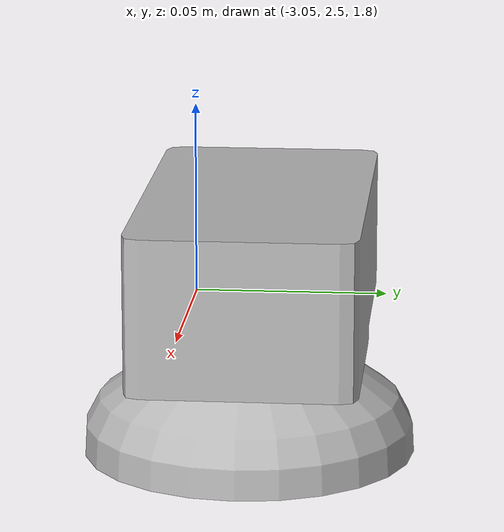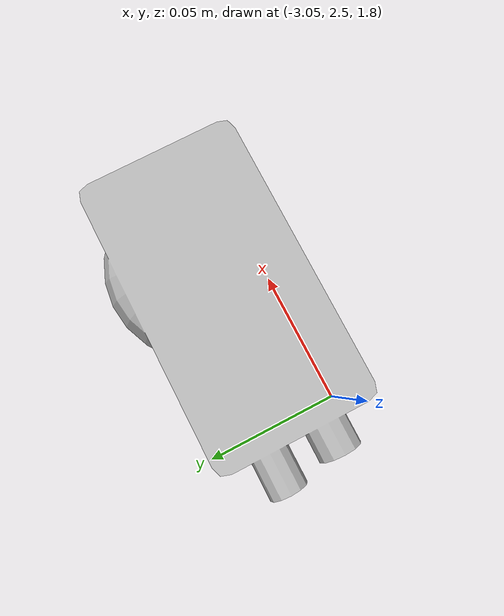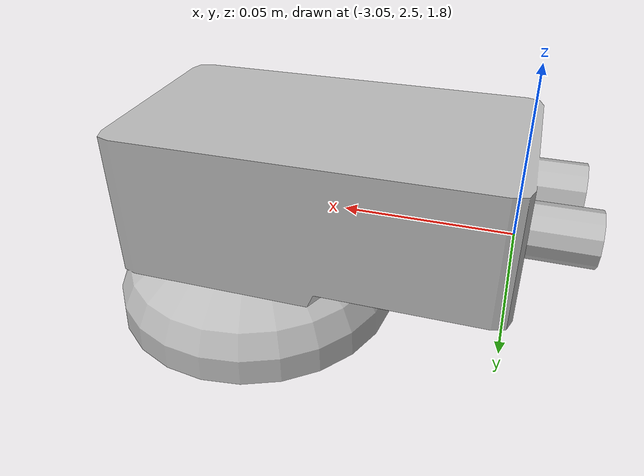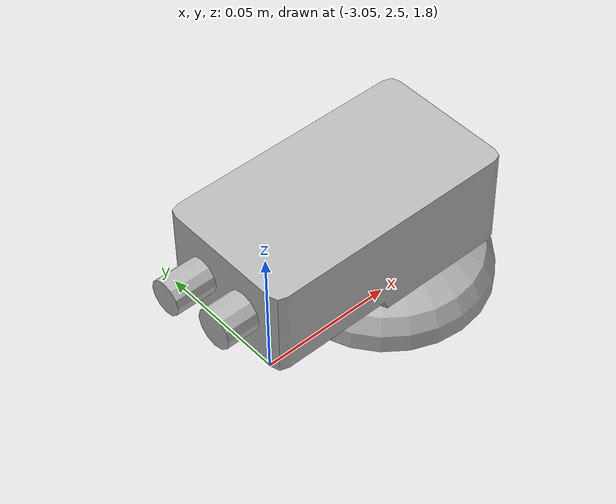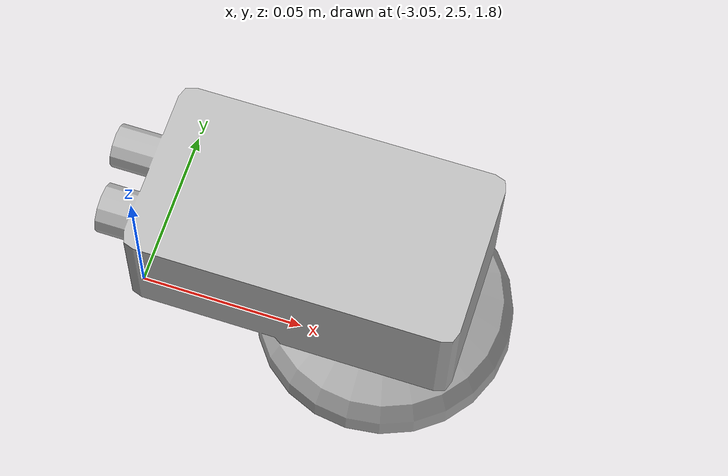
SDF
<?xml version="1.0" ?>
<sdf version="1.5">
  <world name="casus_world">
    <!-- Set the initial camera pose to be looking at the workspace. -->
    <gui>
      <camera name="user_camera">
        <pose>-8 -2 3 0 0.4 0.2</pose>
      </camera>
    </gui>

    <physics type="ode">
      <real_time_factor>1</real_time_factor>
    </physics>

    <!-- Disable shadows. -->
    <scene>
      <shadows>false</shadows>
    </scene>

    <!-- A global light source -->
    <include>
      <uri>model://sun</uri>
    </include>

    <!-- A directed light source -->
    <light name="camera_spot_light" type='spot'>
      <pose>-10 10 10 0 -1 -0.8</pose>
      <diffuse>0.5 0.5 0.5 1</diffuse>
      <specular>0.1 0.1 0.1 1</specular>
      <direction>0 0 -1</direction>
      <attenuation>
        <range>20</range>
        <constant>0.5</constant>
        <linear>0.01</linear>
        <quadratic>0.001</quadratic>
      </attenuation>
      <cast_shadows>0</cast_shadows>
      <spot>
        <inner_angle>0.6</inner_angle>
        <outer_angle>1</outer_angle>
        <falloff>1</falloff>
      </spot>
    </light>

    <!-- Casus 5 environmen1 Part 1 -->
    <!-- Include the logical camera models here -->
    <include>
      <uri>model://logical_camera1</uri>
      <pose>-3 2.5 1.8 0 1.5708 0</pose>
    </include>

  </world>
</sdf>

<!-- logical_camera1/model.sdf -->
<sdf version="1.6">
  <model name="logical_camera_1">
    <plugin name="ros_logical_camera_1" filename="libROSLogicalCameraPlugin.so">
      <robotNamespace>casus</robotNamespace>
    </plugin>
    <link name="logical_camera_1_link">
      <gravity>false</gravity>
      <inertial>
        <mass>0.1</mass>
        <inertia>
          <ixx>0.000166667</ixx>
          <iyy>0.000166667</iyy>
          <izz>0.000166667</izz>
        </inertia>
      </inertial>

      <collision name="collision">
        <pose>0 0.02 0 0 0 -1.5708</pose>
        <geometry>
          <mesh>
            <uri>model://logical_camera1/meshes/camera.dae</uri>
          </mesh>
        </geometry>
      </collision>

      <visual name="visual">
        <pose>0 0.02 0 0 0 -1.5708</pose>
        <geometry>
          <mesh>
            <uri>model://logical_camera1/meshes/camera.dae</uri>
          </mesh>
        </geometry>
      </visual>

      <sensor name="logical_camera_1" type="logical_camera">

        <logical_camera>
          <near>0.2</near>
          <far>1.0</far>
          <horizontal_fov>1.1</horizontal_fov>
          <aspect_ratio>1.5</aspect_ratio>
        </logical_camera>

        <visualize>true</visualize>
        <always_on>true</always_on>
        <update_rate>10</update_rate>
        <topic>logical_camera_1</topic>
      </sensor>
    </link>
  </model>
</sdf>
